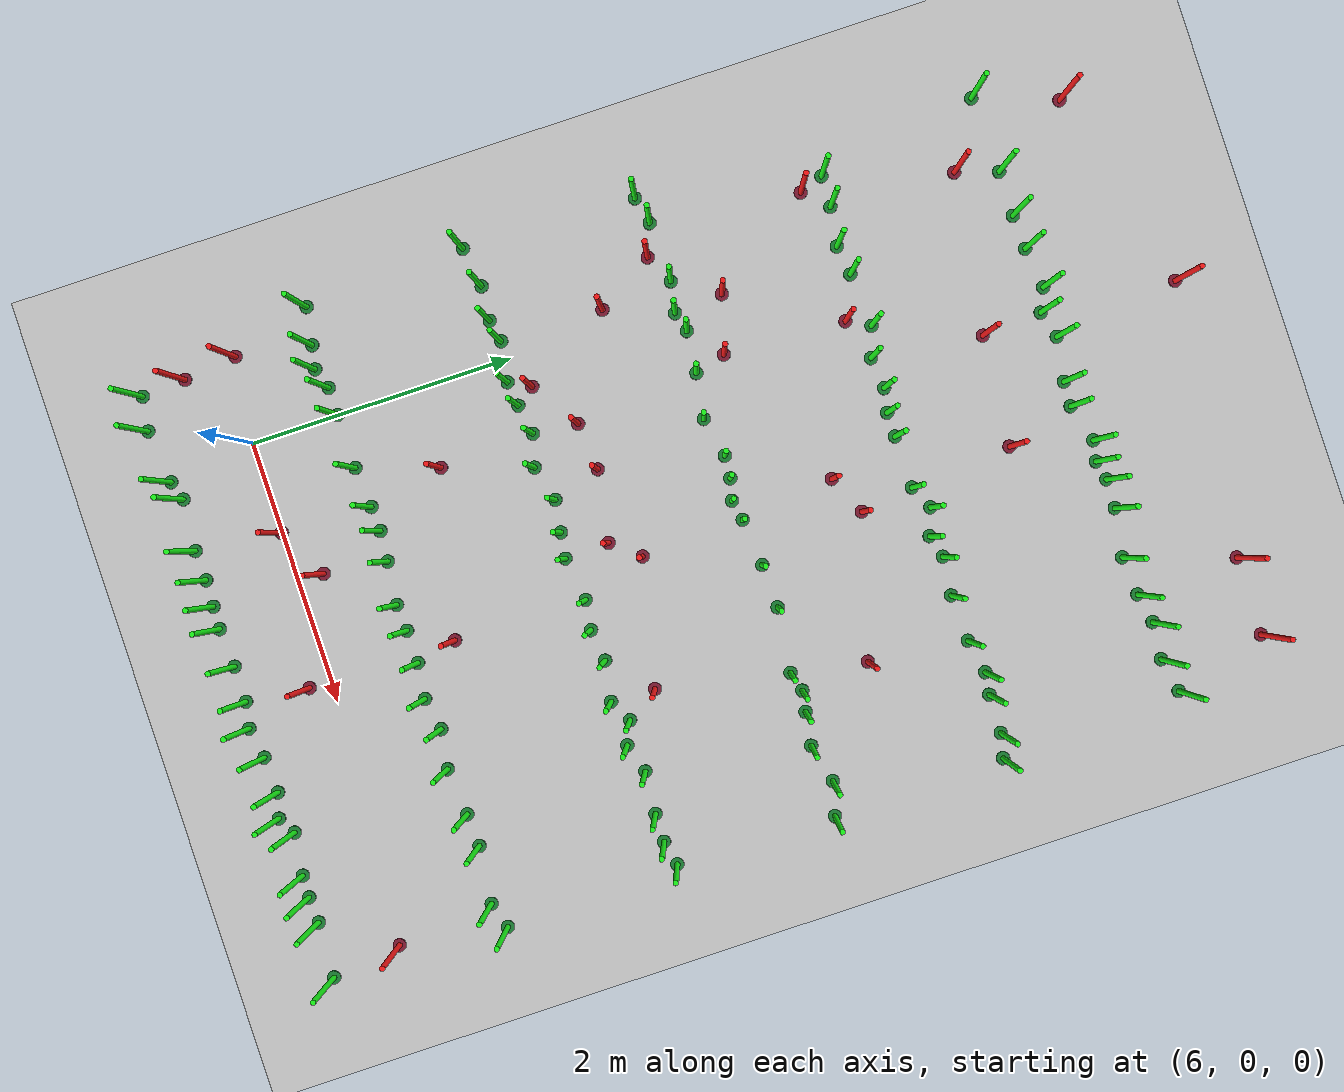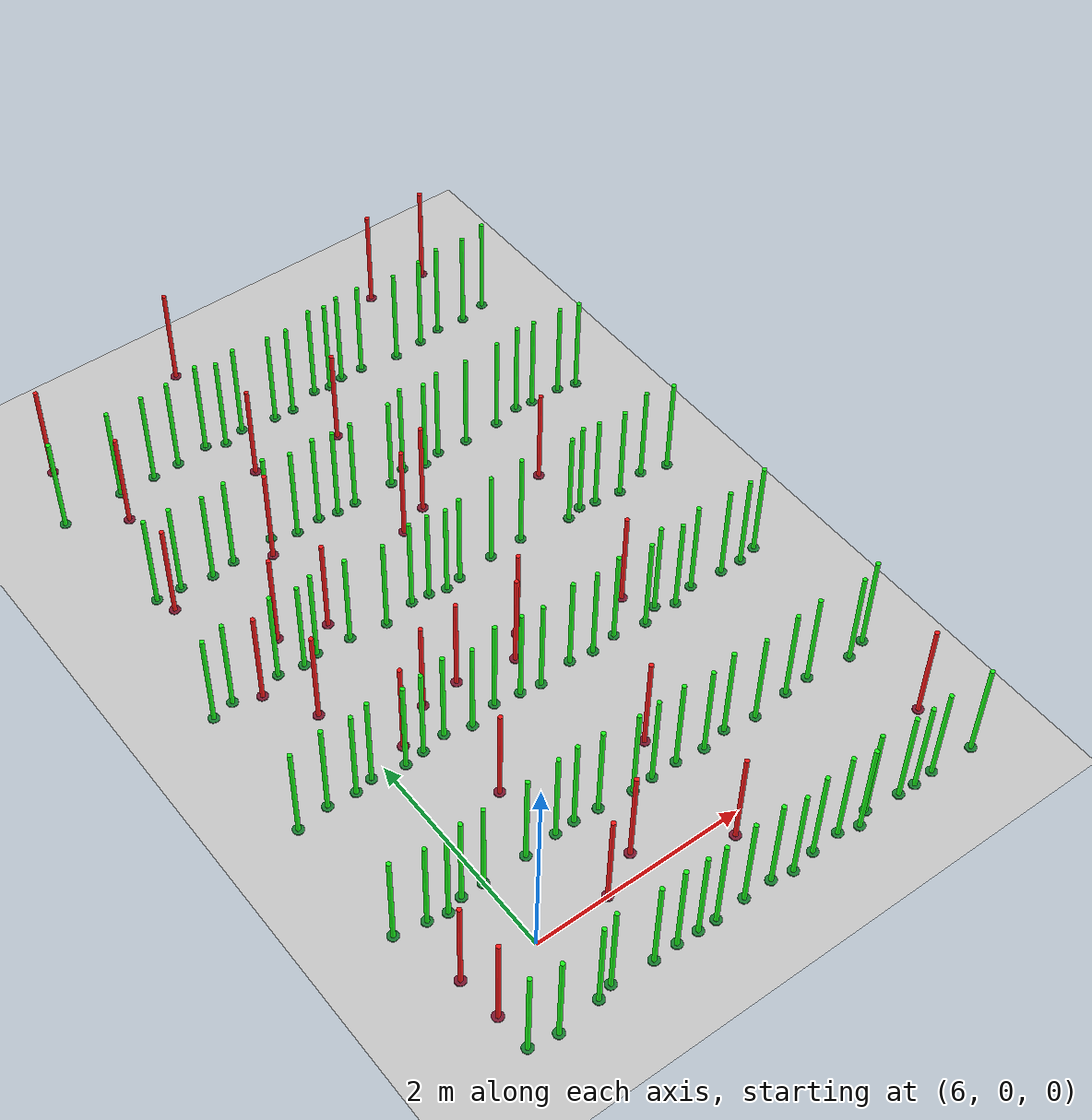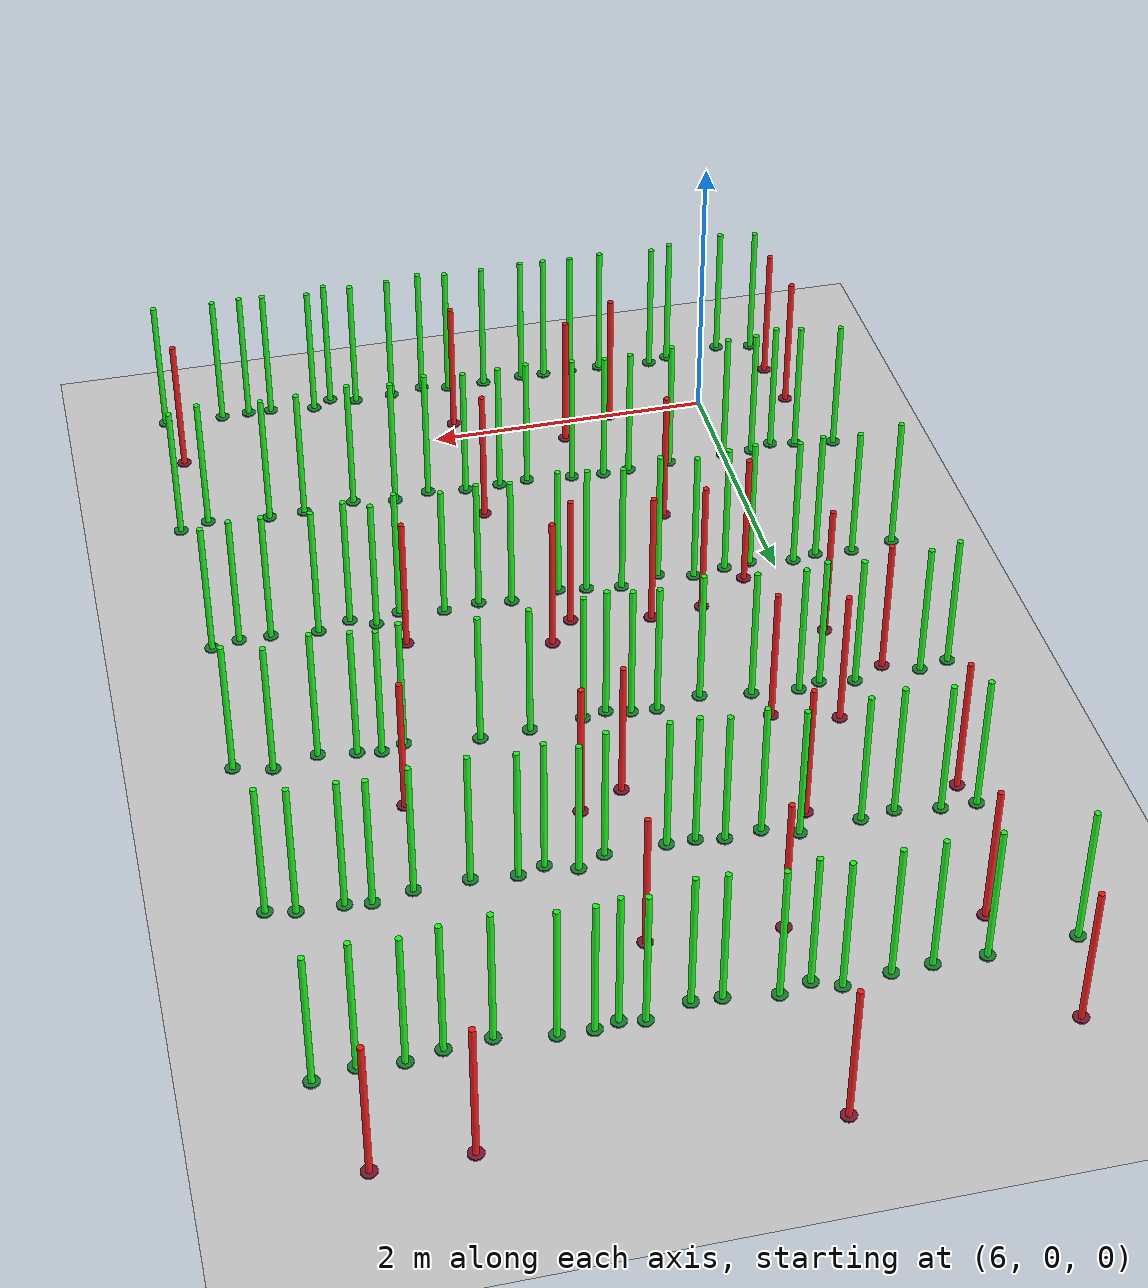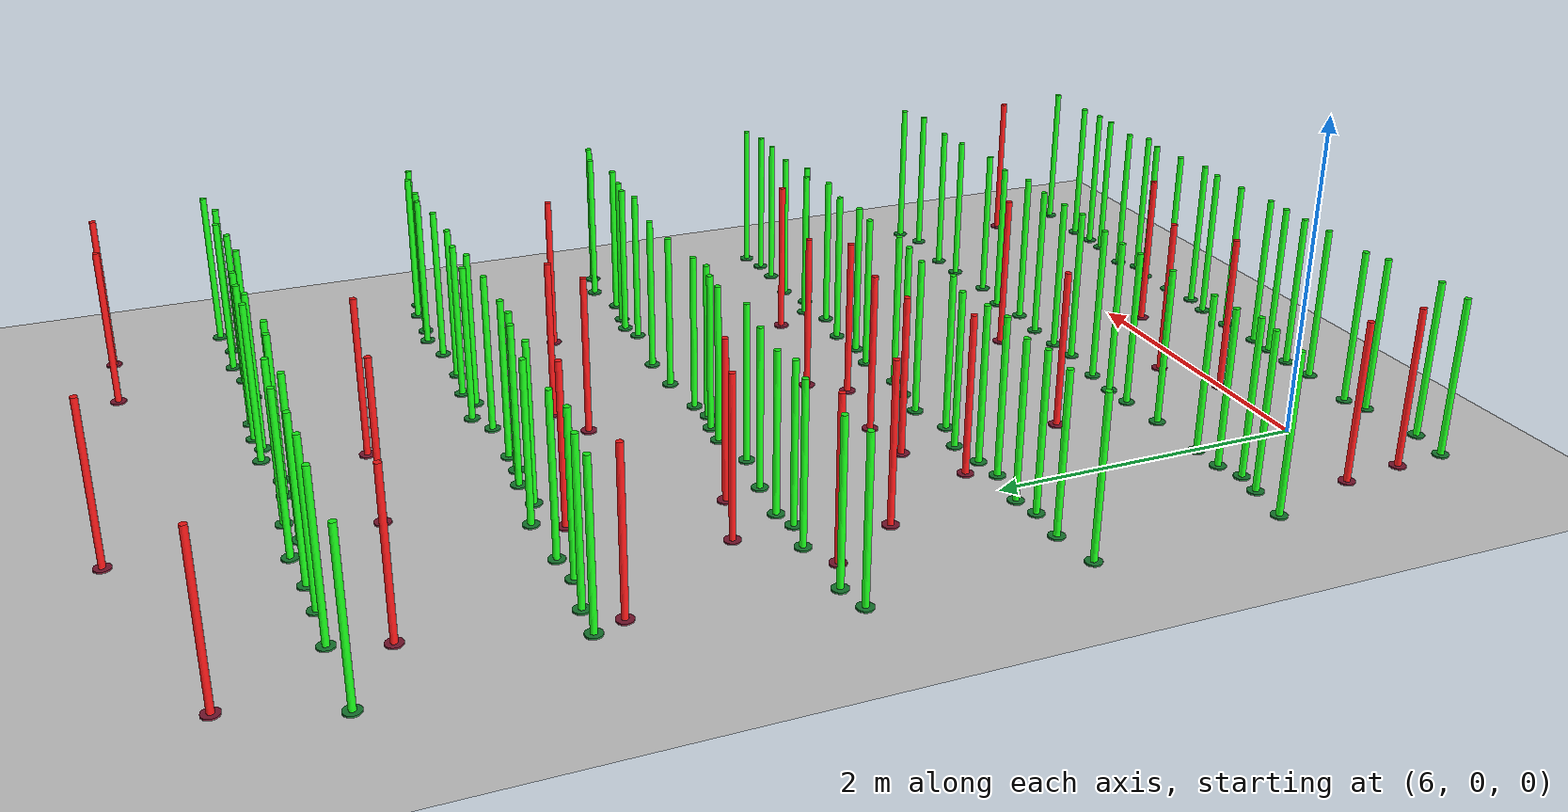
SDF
<sdf version="1.4">
 <world name="default">
  <include><uri>model://ground_plane</uri></include>
  <include><uri>model://sun</uri></include>
  <model name="plantgreen_0_3">
   <include><uri>model://plantgreen</uri></include>
   <pose>9.91726080131 -0.663628570275 0 0 0 0</pose>
  </model>
  <model name="plantgreen_0_6">
   <include><uri>model://plantgreen</uri></include>
   <pose>9.49690851659 -0.64451780509 0 0 0 0</pose>
  </model>
  <model name="plantgreen_0_8">
   <include><uri>model://plantgreen</uri></include>
   <pose>6.61684893379 -0.645744066808 0 0 0 0</pose>
  </model>
  <model name="plantgreen_0_12">
   <include><uri>model://plantgreen</uri></include>
   <pose>5.41591188485 -0.656392381478 0 0 0 0</pose>
  </model>
  <model name="plantgreen_0_13">
   <include><uri>model://plantgreen</uri></include>
   <pose>9.3000952823 -0.653687098961 0 0 0 0</pose>
  </model>
  <model name="plantgreen_0_15">
   <include><uri>model://plantgreen</uri></include>
   <pose>5.67196920353 -0.699039504126 0 0 0 0</pose>
  </model>
  <model name="plantgreen_0_17">
   <include><uri>model://plantgreen</uri></include>
   <pose>7.98199937096 -0.68066942877 0 0 0 0</pose>
  </model>
  <model name="plantgreen_0_19">
   <include><uri>model://plantgreen</uri></include>
   <pose>8.81299051409 -0.604918469341 0 0 0 0</pose>
  </model>
  <model name="plantgreen_0_20">
   <include><uri>model://plantgreen</uri></include>
   <pose>8.21921804684 -0.642191400449 0 0 0 0</pose>
  </model>
  <model name="plantgreen_0_22">
   <include><uri>model://plantgreen</uri></include>
   <pose>7.78740386458 -0.641193994878 0 0 0 0</pose>
  </model>
  <model name="plantgreen_0_24">
   <include><uri>model://plantgreen</uri></include>
   <pose>8.49449140162 -0.628585346243 0 0 0 0</pose>
  </model>
  <model name="plantgreen_0_25">
   <include><uri>model://plantgreen</uri></include>
   <pose>6.84568933781 -0.639398990982 0 0 0 0</pose>
  </model>
  <model name="plantgreen_0_28">
   <include><uri>model://plantgreen</uri></include>
   <pose>7.51444067796 -0.640376288432 0 0 0 0</pose>
  </model>
  <model name="plantgreen_0_29">
   <include><uri>model://plantgreen</uri></include>
   <pose>6.08000968946 -0.655807416447 0 0 0 0</pose>
  </model>
  <model name="plantgreen_0_30">
   <include><uri>model://plantgreen</uri></include>
   <pose>8.67947731268 -0.68175673282 0 0 0 0</pose>
  </model>
  <model name="plantgreen_0_32">
   <include><uri>model://plantgreen</uri></include>
   <pose>7.04653641853 -0.649898486184 0 0 0 0</pose>
  </model>
  <model name="plantgreen_0_33">
   <include><uri>model://plantgreen</uri></include>
   <pose>7.21871496549 -0.657301270465 0 0 0 0</pose>
  </model>
  <model name="plantgreen_0_34">
   <include><uri>model://plantgreen</uri></include>
   <pose>6.22872176235 -0.611074152463 0 0 0 0</pose>
  </model>
  <model name="plantgreen_0_37">
   <include><uri>model://plantgreen</uri></include>
   <pose>9.13321989759 -0.646816445937 0 0 0 0</pose>
  </model>
  <model name="plantgreen_1_1">
   <include><uri>model://plantgreen</uri></include>
   <pose>5.99505377452 0.663291475143 0 0 0 0</pose>
  </model>
  <model name="plantgreen_1_2">
   <include><uri>model://plantgreen</uri></include>
   <pose>8.72556210439 0.611085973214 0 0 0 0</pose>
  </model>
  <model name="plantgreen_1_4">
   <include><uri>model://plantgreen</uri></include>
   <pose>5.62463951893 0.610942525892 0 0 0 0</pose>
  </model>
  <model name="plantgreen_1_7">
   <include><uri>model://plantgreen</uri></include>
   <pose>5.44900763055 0.645619725841 0 0 0 0</pose>
  </model>
  <model name="plantgreen_1_9">
   <include><uri>model://plantgreen</uri></include>
   <pose>7.46012445781 0.636835302209 0 0 0 0</pose>
  </model>
  <model name="plantgreen_1_14">
   <include><uri>model://plantgreen</uri></include>
   <pose>9.08570165166 0.64427710317 0 0 0 0</pose>
  </model>
  <model name="plantgreen_1_15">
   <include><uri>model://plantgreen</uri></include>
   <pose>5.16905321863 0.695256611274 0 0 0 0</pose>
  </model>
  <model name="plantgreen_1_16">
   <include><uri>model://plantgreen</uri></include>
   <pose>7.663234375 0.647860340857 0 0 0 0</pose>
  </model>
  <model name="plantgreen_1_19">
   <include><uri>model://plantgreen</uri></include>
   <pose>8.18228625932 0.615690493093 0 0 0 0</pose>
  </model>
  <model name="plantgreen_1_21">
   <include><uri>model://plantgreen</uri></include>
   <pose>7.913985909 0.650132979823 0 0 0 0</pose>
  </model>
  <model name="plantgreen_1_23">
   <include><uri>model://plantgreen</uri></include>
   <pose>6.406724532 0.663670789626 0 0 0 0</pose>
  </model>
  <model name="plantgreen_1_24">
   <include><uri>model://plantgreen</uri></include>
   <pose>8.42993794079 0.658921268503 0 0 0 0</pose>
  </model>
  <model name="plantgreen_1_26">
   <include><uri>model://plantgreen</uri></include>
   <pose>9.76626210254 0.606044193637 0 0 0 0</pose>
  </model>
  <model name="plantgreen_1_27">
   <include><uri>model://plantgreen</uri></include>
   <pose>7.13478294937 0.673833222629 0 0 0 0</pose>
  </model>
  <model name="plantgreen_1_28">
   <include><uri>model://plantgreen</uri></include>
   <pose>9.96638162649 0.667016519436 0 0 0 0</pose>
  </model>
  <model name="plantgreen_1_31">
   <include><uri>model://plantgreen</uri></include>
   <pose>5.78527562326 0.662071664218 0 0 0 0</pose>
  </model>
  <model name="plantgreen_1_34">
   <include><uri>model://plantgreen</uri></include>
   <pose>6.71660186628 0.685638656492 0 0 0 0</pose>
  </model>
  <model name="plantgreen_1_36">
   <include><uri>model://plantgreen</uri></include>
   <pose>9.33463531462 0.65493597386 0 0 0 0</pose>
  </model>
  <model name="plantgreen_1_37">
   <include><uri>model://plantgreen</uri></include>
   <pose>6.90477579053 0.692657143825 0 0 0 0</pose>
  </model>
  <model name="plantgreen_2_7">
   <include><uri>model://plantgreen</uri></include>
   <pose>5.85903570436 1.97532904844 0 0 0 0</pose>
  </model>
  <model name="plantgreen_2_9">
   <include><uri>model://plantgreen</uri></include>
   <pose>5.12429485459 1.92302687655 0 0 0 0</pose>
  </model>
  <model name="plantgreen_2_12">
   <include><uri>model://plantgreen</uri></include>
   <pose>7.09246109831 1.98694327977 0 0 0 0</pose>
  </model>
  <model name="plantgreen_2_13">
   <include><uri>model://plantgreen</uri></include>
   <pose>6.81800122495 1.91692573271 0 0 0 0</pose>
  </model>
  <model name="plantgreen_2_15">
   <include><uri>model://plantgreen</uri></include>
   <pose>8.80485228564 1.99905240052 0 0 0 0</pose>
  </model>
  <model name="plantgreen_2_16">
   <include><uri>model://plantgreen</uri></include>
   <pose>5.42989492652 1.96579721488 0 0 0 0</pose>
  </model>
  <model name="plantgreen_2_17">
   <include><uri>model://plantgreen</uri></include>
   <pose>8.63278408873 1.90965024558 0 0 0 0</pose>
  </model>
  <model name="plantgreen_2_19">
   <include><uri>model://plantgreen</uri></include>
   <pose>5.68851521739 1.94254583458 0 0 0 0</pose>
  </model>
  <model name="plantgreen_2_20">
   <include><uri>model://plantgreen</uri></include>
   <pose>6.15994797569 1.92559116888 0 0 0 0</pose>
  </model>
  <model name="plantgreen_2_21">
   <include><uri>model://plantgreen</uri></include>
   <pose>8.97369870048 1.92118855683 0 0 0 0</pose>
  </model>
  <model name="plantgreen_2_22">
   <include><uri>model://plantgreen</uri></include>
   <pose>8.08514016342 1.93457489655 0 0 0 0</pose>
  </model>
  <model name="plantgreen_2_23">
   <include><uri>model://plantgreen</uri></include>
   <pose>7.86176031666 1.96652860809 0 0 0 0</pose>
  </model>
  <model name="plantgreen_2_24">
   <include><uri>model://plantgreen</uri></include>
   <pose>9.19839244487 1.98652759287 0 0 0 0</pose>
  </model>
  <model name="plantgreen_2_26">
   <include><uri>model://plantgreen</uri></include>
   <pose>7.33272556394 1.9507659172 0 0 0 0</pose>
  </model>
  <model name="plantgreen_2_29">
   <include><uri>model://plantgreen</uri></include>
   <pose>9.73263793991 1.95559238219 0 0 0 0</pose>
  </model>
  <model name="plantgreen_2_30">
   <include><uri>model://plantgreen</uri></include>
   <pose>6.57838902385 1.9839388392 0 0 0 0</pose>
  </model>
  <model name="plantgreen_2_31">
   <include><uri>model://plantgreen</uri></include>
   <pose>9.51798940542 1.95912768089 0 0 0 0</pose>
  </model>
  <model name="plantgreen_2_32">
   <include><uri>model://plantgreen</uri></include>
   <pose>9.92063376602 1.9949706913 0 0 0 0</pose>
  </model>
  <model name="plantgreen_2_33">
   <include><uri>model://plantgreen</uri></include>
   <pose>7.52584318524 1.92158510564 0 0 0 0</pose>
  </model>
  <model name="plantgreen_2_35">
   <include><uri>model://plantgreen</uri></include>
   <pose>8.33021162279 1.96297755674 0 0 0 0</pose>
  </model>
  <model name="plantgreen_2_39">
   <include><uri>model://plantgreen</uri></include>
   <pose>6.34770355323 1.94651293822 0 0 0 0</pose>
  </model>
  <model name="plantgreen_3_1">
   <include><uri>model://plantgreen</uri></include>
   <pose>8.84484448842 3.22914666218 0 0 0 0</pose>
  </model>
  <model name="plantgreen_3_2">
   <include><uri>model://plantgreen</uri></include>
   <pose>9.94927513802 3.20873495747 0 0 0 0</pose>
  </model>
  <model name="plantgreen_3_3">
   <include><uri>model://plantgreen</uri></include>
   <pose>6.87153119853 3.2115592675 0 0 0 0</pose>
  </model>
  <model name="plantgreen_3_4">
   <include><uri>model://plantgreen</uri></include>
   <pose>6.21727616111 3.29615004466 0 0 0 0</pose>
  </model>
  <model name="plantgreen_3_8">
   <include><uri>model://plantgreen</uri></include>
   <pose>5.37759300839 3.28634606481 0 0 0 0</pose>
  </model>
  <model name="plantgreen_3_9">
   <include><uri>model://plantgreen</uri></include>
   <pose>8.35663835358 3.29063214141 0 0 0 0</pose>
  </model>
  <model name="plantgreen_3_13">
   <include><uri>model://plantgreen</uri></include>
   <pose>9.69890178263 3.27384048978 0 0 0 0</pose>
  </model>
  <model name="plantgreen_3_18">
   <include><uri>model://plantgreen</uri></include>
   <pose>7.66511878412 3.24862567369 0 0 0 0</pose>
  </model>
  <model name="plantgreen_3_21">
   <include><uri>model://plantgreen</uri></include>
   <pose>7.34745787976 3.25953425129 0 0 0 0</pose>
  </model>
  <model name="plantgreen_3_22">
   <include><uri>model://plantgreen</uri></include>
   <pose>5.16974488365 3.24109127534 0 0 0 0</pose>
  </model>
  <model name="plantgreen_3_23">
   <include><uri>model://plantgreen</uri></include>
   <pose>6.53296790933 3.26610090117 0 0 0 0</pose>
  </model>
  <model name="plantgreen_3_24">
   <include><uri>model://plantgreen</uri></include>
   <pose>5.83278264774 3.29955619736 0 0 0 0</pose>
  </model>
  <model name="plantgreen_3_25">
   <include><uri>model://plantgreen</uri></include>
   <pose>9.40183604619 3.20565079754 0 0 0 0</pose>
  </model>
  <model name="plantgreen_3_31">
   <include><uri>model://plantgreen</uri></include>
   <pose>7.5073198908 3.21965741795 0 0 0 0</pose>
  </model>
  <model name="plantgreen_3_32">
   <include><uri>model://plantgreen</uri></include>
   <pose>9.15233131186 3.2434495889 0 0 0 0</pose>
  </model>
  <model name="plantgreen_3_34">
   <include><uri>model://plantgreen</uri></include>
   <pose>8.99570598064 3.27025942734 0 0 0 0</pose>
  </model>
  <model name="plantgreen_3_38">
   <include><uri>model://plantgreen</uri></include>
   <pose>7.17590205556 3.27320369477 0 0 0 0</pose>
  </model>
  <model name="plantgreen_3_39">
   <include><uri>model://plantgreen</uri></include>
   <pose>8.02569601256 3.2821321988 0 0 0 0</pose>
  </model>
  <model name="plantgreen_3_40">
   <include><uri>model://plantgreen</uri></include>
   <pose>6.06535319518 3.2550337117 0 0 0 0</pose>
  </model>
  <model name="plantgreen_4_1">
   <include><uri>model://plantgreen</uri></include>
   <pose>9.2916661913 4.59117247221 0 0 0 0</pose>
  </model>
  <model name="plantgreen_4_7">
   <include><uri>model://plantgreen</uri></include>
   <pose>6.20028407084 4.56940553428 0 0 0 0</pose>
  </model>
  <model name="plantgreen_4_9">
   <include><uri>model://plantgreen</uri></include>
   <pose>5.97350811546 4.53914029175 0 0 0 0</pose>
  </model>
  <model name="plantgreen_4_10">
   <include><uri>model://plantgreen</uri></include>
   <pose>8.38516824763 4.56323130598 0 0 0 0</pose>
  </model>
  <model name="plantgreen_4_12">
   <include><uri>model://plantgreen</uri></include>
   <pose>9.45758084042 4.56806602925 0 0 0 0</pose>
  </model>
  <model name="plantgreen_4_13">
   <include><uri>model://plantgreen</uri></include>
   <pose>5.44728441499 4.59535410577 0 0 0 0</pose>
  </model>
  <model name="plantgreen_4_15">
   <include><uri>model://plantgreen</uri></include>
   <pose>9.7513861375 4.55919322878 0 0 0 0</pose>
  </model>
  <model name="plantgreen_4_16">
   <include><uri>model://plantgreen</uri></include>
   <pose>8.67635388661 4.5308813017 0 0 0 0</pose>
  </model>
  <model name="plantgreen_4_19">
   <include><uri>model://plantgreen</uri></include>
   <pose>9.93377247354 4.51722984324 0 0 0 0</pose>
  </model>
  <model name="plantgreen_4_20">
   <include><uri>model://plantgreen</uri></include>
   <pose>5.68161207946 4.58666709199 0 0 0 0</pose>
  </model>
  <model name="plantgreen_4_23">
   <include><uri>model://plantgreen</uri></include>
   <pose>7.43521451574 4.50689739157 0 0 0 0</pose>
  </model>
  <model name="plantgreen_4_24">
   <include><uri>model://plantgreen</uri></include>
   <pose>7.07267592748 4.54270445975 0 0 0 0</pose>
  </model>
  <model name="plantgreen_4_31">
   <include><uri>model://plantgreen</uri></include>
   <pose>7.83043218743 4.50690344641 0 0 0 0</pose>
  </model>
  <model name="plantgreen_4_32">
   <include><uri>model://plantgreen</uri></include>
   <pose>6.83315865234 4.51987271353 0 0 0 0</pose>
  </model>
  <model name="plantgreen_4_34">
   <include><uri>model://plantgreen</uri></include>
   <pose>6.60788809513 4.59830745829 0 0 0 0</pose>
  </model>
  <model name="plantgreen_4_36">
   <include><uri>model://plantgreen</uri></include>
   <pose>8.0123699099 4.59036342663 0 0 0 0</pose>
  </model>
  <model name="plantgreen_4_37">
   <include><uri>model://plantgreen</uri></include>
   <pose>9.03017370695 4.54335949352 0 0 0 0</pose>
  </model>
  <model name="plantgreen_4_38">
   <include><uri>model://plantgreen</uri></include>
   <pose>8.21205395739 4.51778066861 0 0 0 0</pose>
  </model>
  <model name="plantgreen_4_39">
   <include><uri>model://plantgreen</uri></include>
   <pose>7.25170398706 4.50713882333 0 0 0 0</pose>
  </model>
  <model name="plantgreen_5_5">
   <include><uri>model://plantgreen</uri></include>
   <pose>8.22502319538 5.88398103445 0 0 0 0</pose>
  </model>
  <model name="plantgreen_5_7">
   <include><uri>model://plantgreen</uri></include>
   <pose>5.2495795273 5.82200924035 0 0 0 0</pose>
  </model>
  <model name="plantgreen_5_8">
   <include><uri>model://plantgreen</uri></include>
   <pose>9.60769711943 5.84954288035 0 0 0 0</pose>
  </model>
  <model name="plantgreen_5_9">
   <include><uri>model://plantgreen</uri></include>
   <pose>6.16610197814 5.84148096406 0 0 0 0</pose>
  </model>
  <model name="plantgreen_5_10">
   <include><uri>model://plantgreen</uri></include>
   <pose>9.87031448523 5.89942170291 0 0 0 0</pose>
  </model>
  <model name="plantgreen_5_11">
   <include><uri>model://plantgreen</uri></include>
   <pose>7.11376983742 5.86717480408 0 0 0 0</pose>
  </model>
  <model name="plantgreen_5_12">
   <include><uri>model://plantgreen</uri></include>
   <pose>5.82768884054 5.84797964193 0 0 0 0</pose>
  </model>
  <model name="plantgreen_5_15">
   <include><uri>model://plantgreen</uri></include>
   <pose>9.10055098829 5.83545834278 0 0 0 0</pose>
  </model>
  <model name="plantgreen_5_16">
   <include><uri>model://plantgreen</uri></include>
   <pose>7.92099342272 5.88321951172 0 0 0 0</pose>
  </model>
  <model name="plantgreen_5_17">
   <include><uri>model://plantgreen</uri></include>
   <pose>7.44368141702 5.81421165625 0 0 0 0</pose>
  </model>
  <model name="plantgreen_5_21">
   <include><uri>model://plantgreen</uri></include>
   <pose>6.42570986128 5.8512968079 0 0 0 0</pose>
  </model>
  <model name="plantgreen_5_23">
   <include><uri>model://plantgreen</uri></include>
   <pose>7.63116983372 5.80380565369 0 0 0 0</pose>
  </model>
  <model name="plantgreen_5_29">
   <include><uri>model://plantgreen</uri></include>
   <pose>6.73682807505 5.88693952269 0 0 0 0</pose>
  </model>
  <model name="plantgreen_5_31">
   <include><uri>model://plantgreen</uri></include>
   <pose>8.80615214804 5.81399412119 0 0 0 0</pose>
  </model>
  <model name="plantgreen_5_35">
   <include><uri>model://plantgreen</uri></include>
   <pose>8.44522190067 5.87625824033 0 0 0 0</pose>
  </model>
  <model name="plantgreen_5_37">
   <include><uri>model://plantgreen</uri></include>
   <pose>6.90690767143 5.81112114779 0 0 0 0</pose>
  </model>
  <model name="plantgreen_5_39">
   <include><uri>model://plantgreen</uri></include>
   <pose>8.07479150941 5.85298030668 0 0 0 0</pose>
  </model>
  <model name="plantgreen_5_40">
   <include><uri>model://plantgreen</uri></include>
   <pose>9.32912454193 5.8768348343 0 0 0 0</pose>
  </model>
  <model name="plantred_1">
   <include><uri>model://plantred</uri></include>
   <pose>9.66552314139 6.60458427568 0 0 0 0</pose>
  </model>
  <model name="plantred_2">
   <include><uri>model://plantred</uri></include>
   <pose>6.9769840485 2.35385439332 0 0 0 0</pose>
  </model>
  <model name="plantred_4">
   <include><uri>model://plantred</uri></include>
   <pose>8.94548002384 3.79683259029 0 0 0 0</pose>
  </model>
  <model name="plantred_8">
   <include><uri>model://plantred</uri></include>
   <pose>7.6896924552 2.46603070418 0 0 0 0</pose>
  </model>
  <model name="plantred_9">
   <include><uri>model://plantred</uri></include>
   <pose>7.77099528838 5.28322359507 0 0 0 0</pose>
  </model>
  <model name="plantred_10">
   <include><uri>model://plantred</uri></include>
   <pose>5.72877961092 5.53163049322 0 0 0 0</pose>
  </model>
  <model name="plantred_15">
   <include><uri>model://plantred</uri></include>
   <pose>6.46722461512 3.50076813788 0 0 0 0</pose>
  </model>
  <model name="plantred_16">
   <include><uri>model://plantred</uri></include>
   <pose>7.83865419671 -0.165679172653 0 0 0 0</pose>
  </model>
  <model name="plantred_19">
   <include><uri>model://plantred</uri></include>
   <pose>7.84162922961 0.960880627833 0 0 0 0</pose>
  </model>
  <model name="plantred_21">
   <include><uri>model://plantred</uri></include>
   <pose>6.24860339169 2.08764597952 0 0 0 0</pose>
  </model>
  <model name="plantred_22">
   <include><uri>model://plantred</uri></include>
   <pose>7.51639841011 2.2590039438 0 0 0 0</pose>
  </model>
  <model name="plantred_23">
   <include><uri>model://plantred</uri></include>
   <pose>6.04084600865 3.62613394997 0 0 0 0</pose>
  </model>
  <model name="plantred_26">
   <include><uri>model://plantred</uri></include>
   <pose>6.68963611862 7.21325703513e-05 0 0 0 0</pose>
  </model>
  <model name="plantred_27">
   <include><uri>model://plantred</uri></include>
   <pose>7.88367989746 4.10025975445 0 0 0 0</pose>
  </model>
  <model name="plantred_28">
   <include><uri>model://plantred</uri></include>
   <pose>6.93369969198 5.35418879626 0 0 0 0</pose>
  </model>
  <model name="plantred_29">
   <include><uri>model://plantred</uri></include>
   <pose>6.61403120217 2.32241670851 0 0 0 0</pose>
  </model>
  <model name="plantred_30">
   <include><uri>model://plantred</uri></include>
   <pose>5.87311020374 2.75567946455 0 0 0 0</pose>
  </model>
  <model name="plantred_31">
   <include><uri>model://plantred</uri></include>
   <pose>6.99601998926 6.82581058724 0 0 0 0</pose>
  </model>
  <model name="plantred_32">
   <include><uri>model://plantred</uri></include>
   <pose>9.84386686336 -0.132033830763 0 0 0 0</pose>
  </model>
  <model name="plantred_35">
   <include><uri>model://plantred</uri></include>
   <pose>9.07186438012 6.61479142384 0 0 0 0</pose>
  </model>
  <model name="plantred_36">
   <include><uri>model://plantred</uri></include>
   <pose>7.07231917021 0.198274826227 0 0 0 0</pose>
  </model>
  <model name="plantred_37">
   <include><uri>model://plantred</uri></include>
   <pose>6.51651214395 4.42720449124 0 0 0 0</pose>
  </model>
  <model name="plantred_38">
   <include><uri>model://plantred</uri></include>
   <pose>8.64496756719 2.24526005554 0 0 0 0</pose>
  </model>
  <model name="plantred_39">
   <include><uri>model://plantred</uri></include>
   <pose>5.51277805203 4.41165836838 0 0 0 0</pose>
  </model>
  <model name="plantred_41">
   <include><uri>model://plantred</uri></include>
   <pose>5.61156085845 3.19290891136 0 0 0 0</pose>
  </model>
  <model name="plantred_42">
   <include><uri>model://plantred</uri></include>
   <pose>7.58677352313 3.96623886533 0 0 0 0</pose>
  </model>
  <model name="plantred_44">
   <include><uri>model://plantred</uri></include>
   <pose>5.39640995373 -0.321680567551 0 0 0 0</pose>
  </model>
  <model name="plantred_47">
   <include><uri>model://plantred</uri></include>
   <pose>5.35178144865 0.0835275371337 0 0 0 0</pose>
  </model>
  <model name="plantred_48">
   <include><uri>model://plantred</uri></include>
   <pose>6.60333092901 1.26294110682 0 0 0 0</pose>
  </model>
  <model name="plantred_49">
   <include><uri>model://plantred</uri></include>
   <pose>5.46777793714 6.43444584232 0 0 0 0</pose>
  </model>
 </world>
</sdf>
